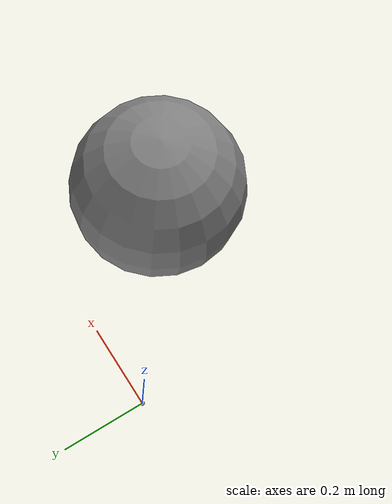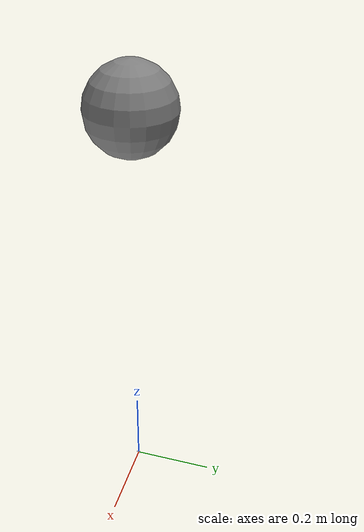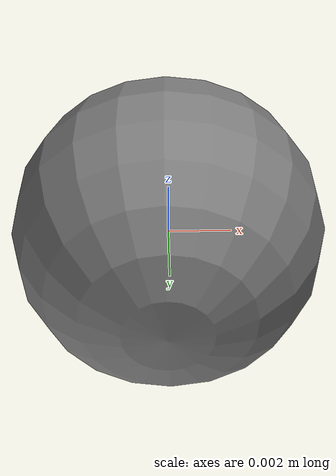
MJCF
<mujoco>
      <option gravity="0 0 0"/>
      <worldbody>
        <site name="world_site" pos="0 0 0"/>
        <body name="b1" pos="0 0 1">
          <freejoint/>
          <geom type="sphere" size="0.1" mass="1.0"/>
        </body>
      </worldbody>
      <sensor>
        <velocimeter site="world_site"/>
        <framelinvel site="world_site"/>
        <frameangvel site="world_site"/>
      </sensor>
    </mujoco>
